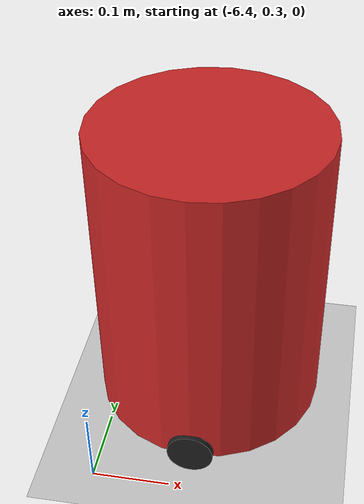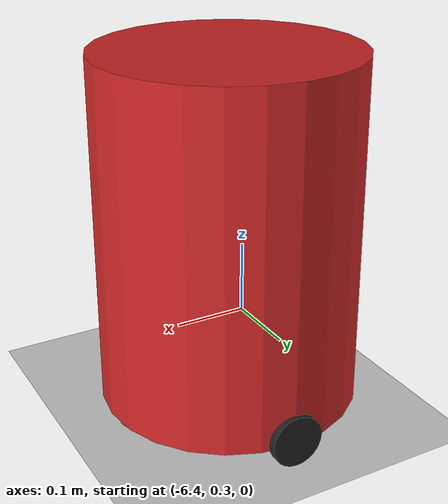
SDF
<sdf version="1.6">
 <world name="default">
  <model name="ground_plane">
   <static>1</static>
   <link name="ground_link">
    <collision name="collision">
     <geometry><plane><normal>0 0 1</normal><size>100 100</size></plane></geometry>
     <surface><friction><ode><mu>100</mu><mu2>50</mu2></ode></friction></surface>
    </collision>
    <visual name="visual">
     <cast_shadows>0</cast_shadows>
     <geometry><plane><normal>0 0 1</normal><size>100 100</size></plane></geometry>
     <material>
      <script><uri>file://media/materials/scripts/gazebo.material</uri><name>Gazebo/Grey</name></script>
     </material>
    </visual>
   </link>
  </model>
  <model name="CleanerBot_3">
   <link name="link_0">
    <inertial>
     <mass>1</mass>
     <inertia><ixx>0.145833</ixx><ixy>0</ixy><ixz>0</ixz><iyy>0.145833</iyy><iyz>0</iyz><izz>0.125</izz></inertia>
    </inertial>
    <pose>0 0 0.2001 0 -0 0</pose>
    <visual name="visual">
     <geometry><cylinder><radius>0.15</radius><length>0.4</length></cylinder></geometry>
     <material>
      <lighting>1</lighting>
      <script><uri>file://media/materials/scripts/gazebo.material</uri><name>Gazebo/Red</name></script>
      <shader type="pixel"><normal_map>__default__</normal_map></shader>
      <ambient>0.8 0 0 1</ambient>
      <diffuse>0.7 0.7 0.7 1</diffuse>
      <specular>0.01 0.01 0.01 1</specular>
      <emissive>0 0 0 1</emissive>
     </material>
    </visual>
    <collision name="collision">
     <geometry><cylinder><radius>0.15</radius><length>0.4</length></cylinder></geometry>
     <surface>
      <friction>
       <ode><mu>1</mu><mu2>1</mu2><fdir1>0 0 0</fdir1><slip1>0</slip1><slip2>0</slip2></ode>
       <torsional>
        <coefficient>1</coefficient>
        <patch_radius>0</patch_radius>
        <surface_radius>0</surface_radius>
        <use_patch_radius>1</use_patch_radius>
        <ode><slip>0</slip></ode>
       </torsional>
      </friction>
      <bounce><restitution_coefficient>0</restitution_coefficient><threshold>1e+06</threshold></bounce>
      <contact>
       <collide_without_contact>0</collide_without_contact>
       <collide_without_contact_bitmask>1</collide_without_contact_bitmask>
       <collide_bitmask>1</collide_bitmask>
       <ode>
        <soft_cfm>0</soft_cfm>
        <soft_erp>0.2</soft_erp>
        <kp>1e+13</kp>
        <kd>1</kd>
        <max_vel>0.01</max_vel>
        <min_depth>0</min_depth>
       </ode>
       <bullet>
        <split_impulse>1</split_impulse>
        <split_impulse_penetration_threshold>-0.01</split_impulse_penetration_threshold>
        <soft_cfm>0</soft_cfm>
        <soft_erp>0.2</soft_erp>
        <kp>1e+13</kp>
        <kd>1</kd>
       </bullet>
      </contact>
     </surface>
    </collision>
   </link>
   <link name="link_1">
    <inertial>
     <mass>1</mass>
     <inertia><ixx>0.145833</ixx><ixy>0</ixy><ixz>0</ixz><iyy>0.145833</iyy><iyz>0</iyz><izz>0.125</izz></inertia>
    </inertial>
    <pose>0 0.15 0.007 1.5707 -0 0</pose>
    <visual name="visual">
     <geometry><cylinder><radius>0.03</radius><length>0.01</length></cylinder></geometry>
     <material>
      <lighting>1</lighting>
      <script><uri>file://media/materials/scripts/gazebo.material</uri><name>Gazebo/Black</name></script>
      <shader type="pixel"><normal_map>__default__</normal_map></shader>
      <ambient>0 0 0.8 1</ambient>
      <diffuse>0.7 0.7 0.7 1</diffuse>
      <specular>0.01 0.01 0.01 1</specular>
      <emissive>0 0 0 1</emissive>
     </material>
    </visual>
    <collision name="collision">
     <geometry><cylinder><radius>0.03</radius><length>0.01</length></cylinder></geometry>
     <surface>
      <friction>
       <ode><mu>1</mu><mu2>1</mu2><fdir1>0 0 0</fdir1><slip1>0</slip1><slip2>0</slip2></ode>
       <torsional>
        <coefficient>1</coefficient>
        <patch_radius>0</patch_radius>
        <surface_radius>0</surface_radius>
        <use_patch_radius>1</use_patch_radius>
        <ode><slip>0</slip></ode>
       </torsional>
      </friction>
      <bounce><restitution_coefficient>0</restitution_coefficient><threshold>1e+06</threshold></bounce>
      <contact>
       <collide_without_contact>0</collide_without_contact>
       <collide_without_contact_bitmask>1</collide_without_contact_bitmask>
       <collide_bitmask>1</collide_bitmask>
       <ode>
        <soft_cfm>0</soft_cfm>
        <soft_erp>0.2</soft_erp>
        <kp>1e+13</kp>
        <kd>1</kd>
        <max_vel>0.01</max_vel>
        <min_depth>0</min_depth>
       </ode>
       <bullet>
        <split_impulse>1</split_impulse>
        <split_impulse_penetration_threshold>-0.01</split_impulse_penetration_threshold>
        <soft_cfm>0</soft_cfm>
        <soft_erp>0.2</soft_erp>
        <kp>1e+13</kp>
        <kd>1</kd>
       </bullet>
      </contact>
     </surface>
    </collision>
   </link>
   <link name="link_1_clone">
    <inertial>
     <mass>1</mass>
     <inertia><ixx>0.145833</ixx><ixy>0</ixy><ixz>0</ixz><iyy>0.145833</iyy><iyz>0</iyz><izz>0.125</izz></inertia>
    </inertial>
    <pose>0 -0.15 0.007 1.5707 -0 0</pose>
    <visual name="visual">
     <geometry><cylinder><radius>0.03</radius><length>0.01</length></cylinder></geometry>
     <material>
      <lighting>1</lighting>
      <script><uri>file://media/materials/scripts/gazebo.material</uri><name>Gazebo/Black</name></script>
      <shader type="pixel"><normal_map>__default__</normal_map></shader>
      <ambient>0 0 0.8 1</ambient>
      <diffuse>0.7 0.7 0.7 1</diffuse>
      <specular>0.01 0.01 0.01 1</specular>
      <emissive>0 0 0 1</emissive>
     </material>
    </visual>
    <collision name="collision">
     <geometry><cylinder><radius>0.03</radius><length>0.01</length></cylinder></geometry>
     <surface>
      <friction>
       <ode><mu>1</mu><mu2>1</mu2><fdir1>0 0 0</fdir1><slip1>0</slip1><slip2>0</slip2></ode>
       <torsional>
        <coefficient>1</coefficient>
        <patch_radius>0</patch_radius>
        <surface_radius>0</surface_radius>
        <use_patch_radius>1</use_patch_radius>
        <ode><slip>0</slip></ode>
       </torsional>
      </friction>
      <bounce><restitution_coefficient>0</restitution_coefficient><threshold>1e+06</threshold></bounce>
      <contact>
       <collide_without_contact>0</collide_without_contact>
       <collide_without_contact_bitmask>1</collide_without_contact_bitmask>
       <collide_bitmask>1</collide_bitmask>
       <ode>
        <soft_cfm>0</soft_cfm>
        <soft_erp>0.2</soft_erp>
        <kp>1e+13</kp>
        <kd>1</kd>
        <max_vel>0.01</max_vel>
        <min_depth>0</min_depth>
       </ode>
       <bullet>
        <split_impulse>1</split_impulse>
        <split_impulse_penetration_threshold>-0.01</split_impulse_penetration_threshold>
        <soft_cfm>0</soft_cfm>
        <soft_erp>0.2</soft_erp>
        <kp>1e+13</kp>
        <kd>1</kd>
       </bullet>
      </contact>
     </surface>
    </collision>
   </link>
   <link name="link_2">
    <inertial>
     <mass>1</mass>
     <inertia><ixx>0.1</ixx><ixy>0</ixy><ixz>0</ixz><iyy>0.1</iyy><iyz>0</iyz><izz>0.1</izz></inertia>
    </inertial>
    <pose>0.13 0 -0.013 0 -0 0</pose>
    <visual name="visual">
     <geometry><sphere><radius>0.01</radius></sphere></geometry>
     <material>
      <lighting>1</lighting>
      <script><uri>file://media/materials/scripts/gazebo.material</uri><name>Gazebo/Grey</name></script>
      <shader type="pixel"><normal_map>__default__</normal_map></shader>
      <ambient>0.3 0.3 0.3 1</ambient>
      <diffuse>0.7 0.7 0.7 1</diffuse>
      <specular>0.01 0.01 0.01 1</specular>
      <emissive>0 0 0 1</emissive>
     </material>
    </visual>
    <collision name="collision">
     <geometry><sphere><radius>0.01</radius></sphere></geometry>
     <surface>
      <friction>
       <ode><mu>0</mu><mu2>0</mu2><fdir1>0 0 0</fdir1><slip1>0</slip1><slip2>0</slip2></ode>
       <torsional>
        <coefficient>1</coefficient>
        <patch_radius>0</patch_radius>
        <surface_radius>0</surface_radius>
        <use_patch_radius>1</use_patch_radius>
        <ode><slip>0</slip></ode>
       </torsional>
      </friction>
      <bounce><restitution_coefficient>0</restitution_coefficient><threshold>1e+06</threshold></bounce>
      <contact>
       <collide_without_contact>0</collide_without_contact>
       <collide_without_contact_bitmask>1</collide_without_contact_bitmask>
       <collide_bitmask>1</collide_bitmask>
       <ode>
        <soft_cfm>0</soft_cfm>
        <soft_erp>0.2</soft_erp>
        <kp>1e+13</kp>
        <kd>1</kd>
        <max_vel>0.01</max_vel>
        <min_depth>0</min_depth>
       </ode>
       <bullet>
        <split_impulse>1</split_impulse>
        <split_impulse_penetration_threshold>-0.01</split_impulse_penetration_threshold>
        <soft_cfm>0</soft_cfm>
        <soft_erp>0.2</soft_erp>
        <kp>1e+13</kp>
        <kd>1</kd>
       </bullet>
      </contact>
     </surface>
    </collision>
   </link>
   <link name="link_2_clone">
    <inertial>
     <mass>1</mass>
     <inertia><ixx>0.1</ixx><ixy>0</ixy><ixz>0</ixz><iyy>0.1</iyy><iyz>0</iyz><izz>0.1</izz></inertia>
    </inertial>
    <pose>-0.13 0 -0.013 0 -0 0</pose>
    <visual name="visual">
     <geometry><sphere><radius>0.01</radius></sphere></geometry>
     <material>
      <lighting>1</lighting>
      <script><uri>file://media/materials/scripts/gazebo.material</uri><name>Gazebo/Grey</name></script>
      <shader type="pixel"><normal_map>__default__</normal_map></shader>
      <ambient>0.3 0.3 0.3 1</ambient>
      <diffuse>0.7 0.7 0.7 1</diffuse>
      <specular>0.01 0.01 0.01 1</specular>
      <emissive>0 0 0 1</emissive>
     </material>
    </visual>
    <collision name="collision">
     <geometry><sphere><radius>0.01</radius></sphere></geometry>
     <surface>
      <friction>
       <ode><mu>0</mu><mu2>0</mu2><fdir1>0 0 0</fdir1><slip1>0</slip1><slip2>0</slip2></ode>
       <torsional>
        <coefficient>1</coefficient>
        <patch_radius>0</patch_radius>
        <surface_radius>0</surface_radius>
        <use_patch_radius>1</use_patch_radius>
        <ode><slip>0</slip></ode>
       </torsional>
      </friction>
      <bounce><restitution_coefficient>0</restitution_coefficient><threshold>1e+06</threshold></bounce>
      <contact>
       <collide_without_contact>0</collide_without_contact>
       <collide_without_contact_bitmask>1</collide_without_contact_bitmask>
       <collide_bitmask>1</collide_bitmask>
       <ode>
        <soft_cfm>0</soft_cfm>
        <soft_erp>0.2</soft_erp>
        <kp>1e+13</kp>
        <kd>1</kd>
        <max_vel>0.01</max_vel>
        <min_depth>0</min_depth>
       </ode>
       <bullet>
        <split_impulse>1</split_impulse>
        <split_impulse_penetration_threshold>-0.01</split_impulse_penetration_threshold>
        <soft_cfm>0</soft_cfm>
        <soft_erp>0.2</soft_erp>
        <kp>1e+13</kp>
        <kd>1</kd>
       </bullet>
      </contact>
     </surface>
    </collision>
   </link>
   <joint name="link_0_JOINT_1" type="revolute">
    <parent>link_0</parent>
    <child>link_1_clone</child>
    <axis>
     <xyz>0 0 1</xyz>
     <limit>
      <lower>-1.79769e+308</lower>
      <upper>1.79769e+308</upper>
      <effort>-1</effort>
      <velocity>-1</velocity>
     </limit>
     <dynamics>
      <spring_reference>0</spring_reference>
      <spring_stiffness>0</spring_stiffness>
      <damping>0</damping>
     </dynamics>
     <use_parent_model_frame>0</use_parent_model_frame>
    </axis>
    <physics>
     <ode><limit><cfm>0</cfm><erp>0.2</erp></limit><suspension><cfm>0</cfm><erp>0.2</erp></suspension></ode>
    </physics>
   </joint>
   <joint name="link_0_JOINT_2" type="revolute">
    <parent>link_0</parent>
    <child>link_1</child>
    <axis>
     <xyz>0 0 1</xyz>
     <limit>
      <lower>-1.79769e+308</lower>
      <upper>1.79769e+308</upper>
      <effort>-1</effort>
      <velocity>-1</velocity>
     </limit>
     <dynamics>
      <spring_reference>0</spring_reference>
      <spring_stiffness>0</spring_stiffness>
      <damping>0</damping>
     </dynamics>
     <use_parent_model_frame>0</use_parent_model_frame>
    </axis>
    <physics>
     <ode><limit><cfm>0</cfm><erp>0.2</erp></limit><suspension><cfm>0</cfm><erp>0.2</erp></suspension></ode>
    </physics>
   </joint>
   <joint name="link_0_JOINT_4" type="fixed">
    <parent>link_0</parent>
    <child>link_2</child>
    <physics>
     <ode><limit><cfm>0</cfm><erp>0.2</erp></limit><suspension><cfm>0</cfm><erp>0.2</erp></suspension></ode>
    </physics>
   </joint>
   <joint name="link_0_JOINT_5" type="fixed">
    <parent>link_0</parent>
    <child>link_2_clone</child>
    <physics>
     <ode><limit><cfm>0</cfm><erp>0.2</erp></limit><suspension><cfm>0</cfm><erp>0.2</erp></suspension></ode>
    </physics>
   </joint>
   <static>0</static>
   <pose>-6.27554 0.482445 0.023 -1e-06 -1e-06 -0.010987</pose>
  </model>
 </world>
</sdf>
